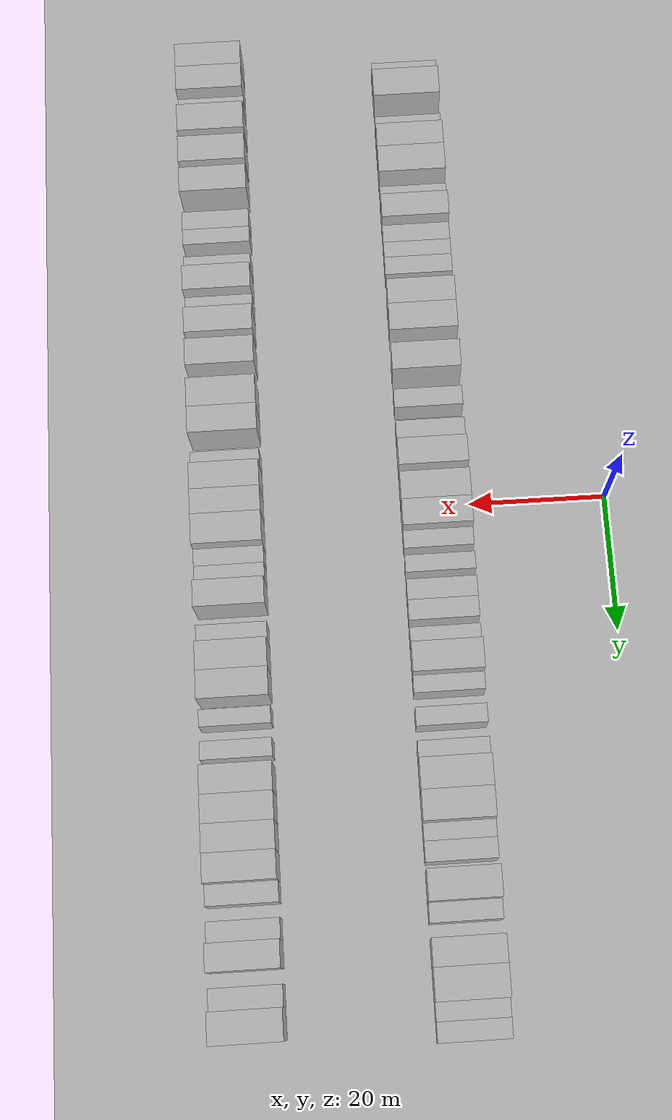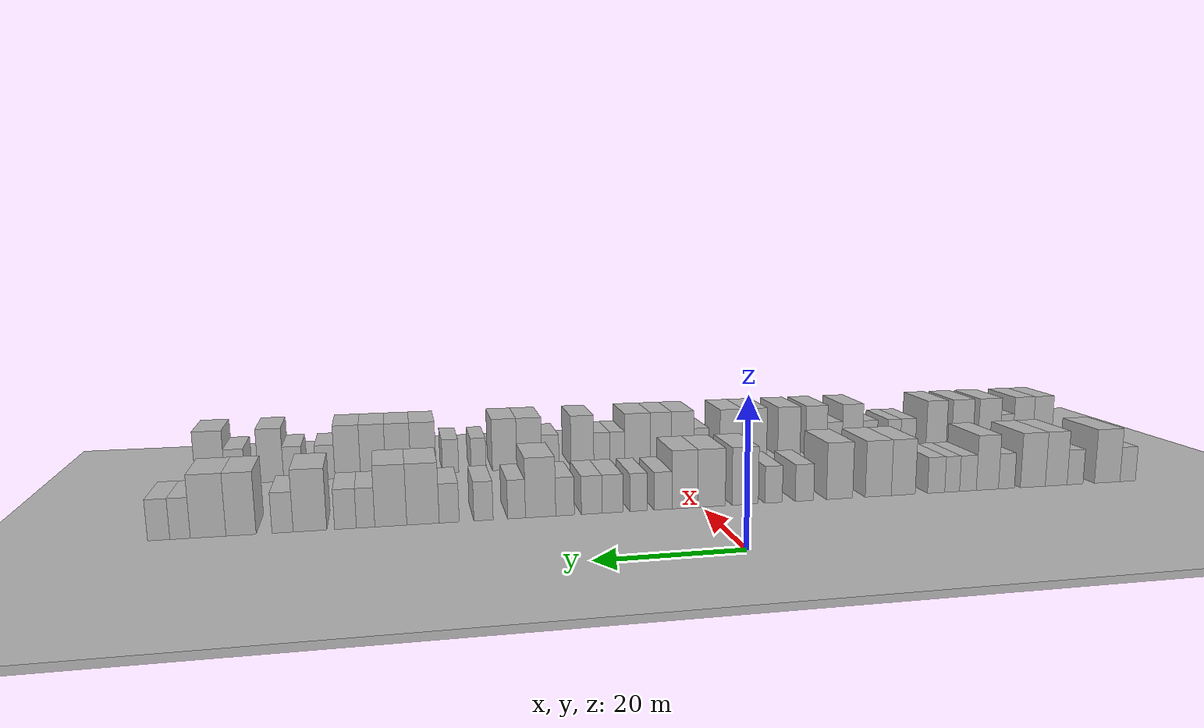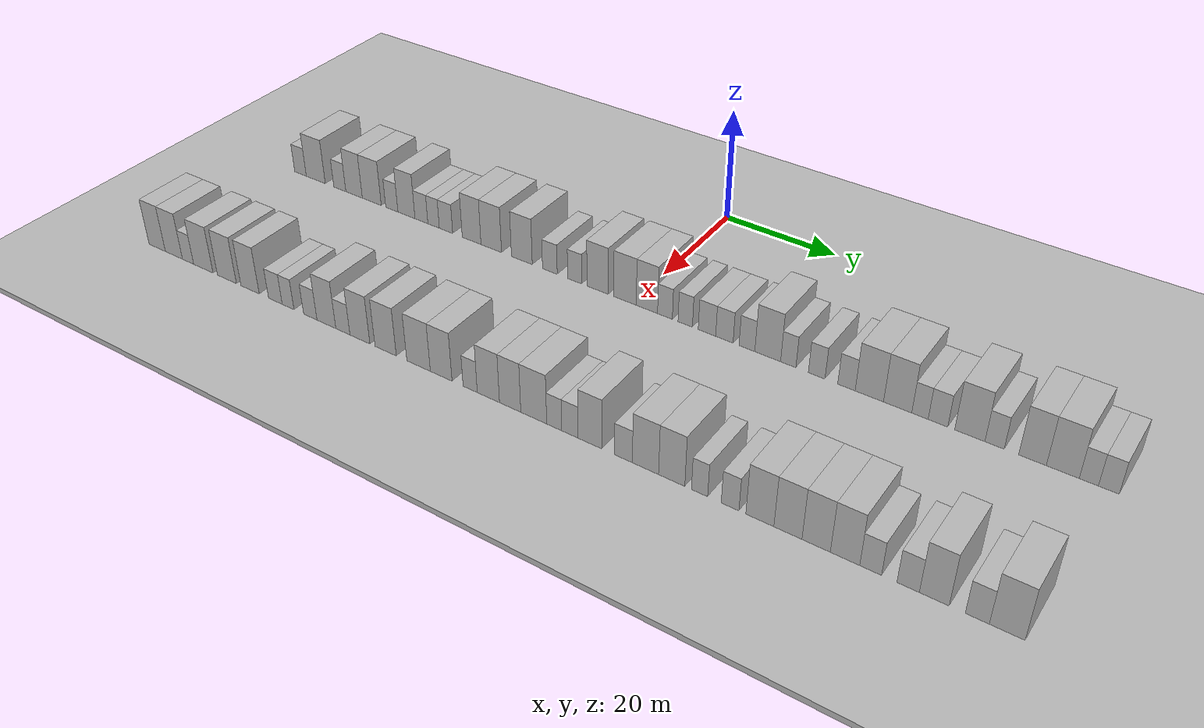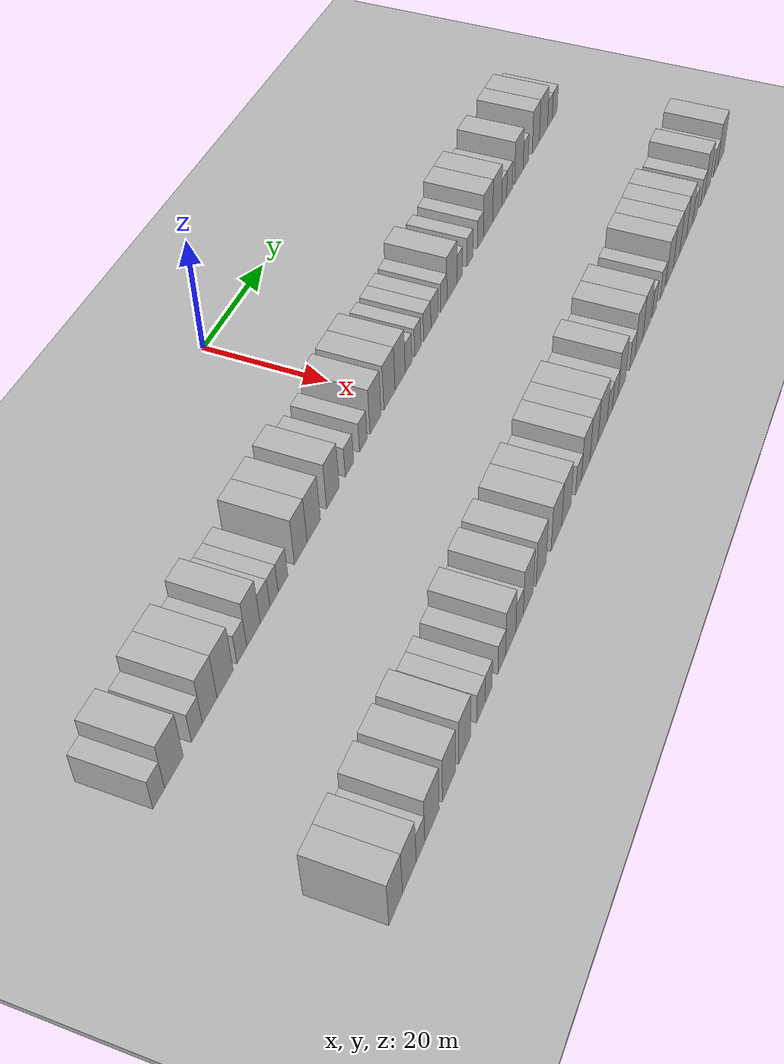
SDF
<sdf version="1.6">
 <world name="default">
  <include><name>ground_plane_1</name><uri>model://HANNAS_ground_plane</uri></include>
  <include>
   <name>ground_plane_2</name>
   <uri>model://HANNAS_ground_plane</uri>
   <pose>100 0 0  0 0 0</pose>
  </include>
  <model name="building_36">
   <static>1</static>
   <pose>25.0000 -68.7085 0 0.000000 0.000000 0.000000</pose>
   <link name="link">
    <pose>0 0 3.00 0 0 0</pose>
    <collision name="collision"><geometry><box><size>10.0000 2.7532 6.0000</size></box></geometry></collision>
    <visual name="visual">
     <cast_shadows>0</cast_shadows>
     <geometry><box><size>10.0000 2.7532 6.0000</size></box></geometry>
     <material>
      <script>
       <uri>model://HANNAS_wall/materials/scripts</uri>
       <uri>model://HANNAS_wall/materials/textures</uri>
       <name>vrc/HANNAS_wall</name>
      </script>
     </material>
    </visual>
   </link>
  </model>
  <model name="building_37">
   <static>1</static>
   <pose>25.0000 -65.0946 0 0.000000 0.000000 0.000000</pose>
   <link name="link">
    <pose>0 0 4.50 0 0 0</pose>
    <collision name="collision"><geometry><box><size>10.0000 4.4745 9.0000</size></box></geometry></collision>
    <visual name="visual">
     <cast_shadows>0</cast_shadows>
     <geometry><box><size>10.0000 4.4745 9.0000</size></box></geometry>
     <material>
      <script>
       <uri>model://HANNAS_wall/materials/scripts</uri>
       <uri>model://HANNAS_wall/materials/textures</uri>
       <name>vrc/HANNAS_wall</name>
      </script>
     </material>
    </visual>
   </link>
  </model>
  <model name="building_38">
   <static>1</static>
   <pose>25.0000 -59.4765 0 0.000000 0.000000 0.000000</pose>
   <link name="link">
    <pose>0 0 3.00 0 0 0</pose>
    <collision name="collision"><geometry><box><size>10.0000 2.7617 6.0000</size></box></geometry></collision>
    <visual name="visual">
     <cast_shadows>0</cast_shadows>
     <geometry><box><size>10.0000 2.7617 6.0000</size></box></geometry>
     <material>
      <script>
       <uri>model://HANNAS_wall/materials/scripts</uri>
       <uri>model://HANNAS_wall/materials/textures</uri>
       <name>vrc/HANNAS_wall</name>
      </script>
     </material>
    </visual>
   </link>
  </model>
  <model name="building_39">
   <static>1</static>
   <pose>25.0000 -56.2175 0 0.000000 0.000000 0.000000</pose>
   <link name="link">
    <pose>0 0 4.50 0 0 0</pose>
    <collision name="collision"><geometry><box><size>10.0000 3.7563 9.0000</size></box></geometry></collision>
    <visual name="visual">
     <cast_shadows>0</cast_shadows>
     <geometry><box><size>10.0000 3.7563 9.0000</size></box></geometry>
     <material>
      <script>
       <uri>model://HANNAS_wall/materials/scripts</uri>
       <uri>model://HANNAS_wall/materials/textures</uri>
       <name>vrc/HANNAS_wall</name>
      </script>
     </material>
    </visual>
   </link>
  </model>
  <model name="building_40">
   <static>1</static>
   <pose>25.0000 -52.2146 0 0.000000 0.000000 0.000000</pose>
   <link name="link">
    <pose>0 0 4.50 0 0 0</pose>
    <collision name="collision"><geometry><box><size>10.0000 4.2497 9.0000</size></box></geometry></collision>
    <visual name="visual">
     <cast_shadows>0</cast_shadows>
     <geometry><box><size>10.0000 4.2497 9.0000</size></box></geometry>
     <material>
      <script>
       <uri>model://HANNAS_wall/materials/scripts</uri>
       <uri>model://HANNAS_wall/materials/textures</uri>
       <name>vrc/HANNAS_wall</name>
      </script>
     </material>
    </visual>
   </link>
  </model>
  <model name="building_41">
   <static>1</static>
   <pose>25.0000 -47.7446 0 0.000000 0.000000 0.000000</pose>
   <link name="link">
    <pose>0 0 3.00 0 0 0</pose>
    <collision name="collision"><geometry><box><size>10.0000 2.6902 6.0000</size></box></geometry></collision>
    <visual name="visual">
     <cast_shadows>0</cast_shadows>
     <geometry><box><size>10.0000 2.6902 6.0000</size></box></geometry>
     <material>
      <script>
       <uri>model://HANNAS_wall/materials/scripts</uri>
       <uri>model://HANNAS_wall/materials/textures</uri>
       <name>vrc/HANNAS_wall</name>
      </script>
     </material>
    </visual>
   </link>
  </model>
  <model name="building_42">
   <static>1</static>
   <pose>25.0000 -44.5399 0 0.000000 0.000000 0.000000</pose>
   <link name="link">
    <pose>0 0 4.50 0 0 0</pose>
    <collision name="collision"><geometry><box><size>10.0000 3.7191 9.0000</size></box></geometry></collision>
    <visual name="visual">
     <cast_shadows>0</cast_shadows>
     <geometry><box><size>10.0000 3.7191 9.0000</size></box></geometry>
     <material>
      <script>
       <uri>model://HANNAS_wall/materials/scripts</uri>
       <uri>model://HANNAS_wall/materials/textures</uri>
       <name>vrc/HANNAS_wall</name>
      </script>
     </material>
    </visual>
   </link>
  </model>
  <model name="building_43">
   <static>1</static>
   <pose>25.0000 -41.2943 0 0.000000 0.000000 0.000000</pose>
   <link name="link">
    <pose>0 0 3.00 0 0 0</pose>
    <collision name="collision"><geometry><box><size>10.0000 2.7721 6.0000</size></box></geometry></collision>
    <visual name="visual">
     <cast_shadows>0</cast_shadows>
     <geometry><box><size>10.0000 2.7721 6.0000</size></box></geometry>
     <material>
      <script>
       <uri>model://HANNAS_wall/materials/scripts</uri>
       <uri>model://HANNAS_wall/materials/textures</uri>
       <name>vrc/HANNAS_wall</name>
      </script>
     </material>
    </visual>
   </link>
  </model>
  <model name="building_44">
   <static>1</static>
   <pose>25.0000 -38.6883 0 0.000000 0.000000 0.000000</pose>
   <link name="link">
    <pose>0 0 3.00 0 0 0</pose>
    <collision name="collision"><geometry><box><size>10.0000 2.4399 6.0000</size></box></geometry></collision>
    <visual name="visual">
     <cast_shadows>0</cast_shadows>
     <geometry><box><size>10.0000 2.4399 6.0000</size></box></geometry>
     <material>
      <script>
       <uri>model://HANNAS_wall/materials/scripts</uri>
       <uri>model://HANNAS_wall/materials/textures</uri>
       <name>vrc/HANNAS_wall</name>
      </script>
     </material>
    </visual>
   </link>
  </model>
  <model name="building_45">
   <static>1</static>
   <pose>25.0000 -36.0601 0 0.000000 0.000000 0.000000</pose>
   <link name="link">
    <pose>0 0 3.00 0 0 0</pose>
    <collision name="collision"><geometry><box><size>10.0000 2.8165 6.0000</size></box></geometry></collision>
    <visual name="visual">
     <cast_shadows>0</cast_shadows>
     <geometry><box><size>10.0000 2.8165 6.0000</size></box></geometry>
     <material>
      <script>
       <uri>model://HANNAS_wall/materials/scripts</uri>
       <uri>model://HANNAS_wall/materials/textures</uri>
       <name>vrc/HANNAS_wall</name>
      </script>
     </material>
    </visual>
   </link>
  </model>
  <model name="building_46">
   <static>1</static>
   <pose>25.0000 -30.7179 0 0.000000 0.000000 0.000000</pose>
   <link name="link">
    <pose>0 0 4.50 0 0 0</pose>
    <collision name="collision"><geometry><box><size>10.0000 3.8680 9.0000</size></box></geometry></collision>
    <visual name="visual">
     <cast_shadows>0</cast_shadows>
     <geometry><box><size>10.0000 3.8680 9.0000</size></box></geometry>
     <material>
      <script>
       <uri>model://HANNAS_wall/materials/scripts</uri>
       <uri>model://HANNAS_wall/materials/textures</uri>
       <name>vrc/HANNAS_wall</name>
      </script>
     </material>
    </visual>
   </link>
  </model>
  <model name="building_47">
   <static>1</static>
   <pose>25.0000 -26.7007 0 0.000000 0.000000 0.000000</pose>
   <link name="link">
    <pose>0 0 4.50 0 0 0</pose>
    <collision name="collision"><geometry><box><size>10.0000 4.1663 9.0000</size></box></geometry></collision>
    <visual name="visual">
     <cast_shadows>0</cast_shadows>
     <geometry><box><size>10.0000 4.1663 9.0000</size></box></geometry>
     <material>
      <script>
       <uri>model://HANNAS_wall/materials/scripts</uri>
       <uri>model://HANNAS_wall/materials/textures</uri>
       <name>vrc/HANNAS_wall</name>
      </script>
     </material>
    </visual>
   </link>
  </model>
  <model name="building_48">
   <static>1</static>
   <pose>25.0000 -20.5544 0 0.000000 0.000000 0.000000</pose>
   <link name="link">
    <pose>0 0 4.50 0 0 0</pose>
    <collision name="collision"><geometry><box><size>10.0000 4.1264 9.0000</size></box></geometry></collision>
    <visual name="visual">
     <cast_shadows>0</cast_shadows>
     <geometry><box><size>10.0000 4.1264 9.0000</size></box></geometry>
     <material>
      <script>
       <uri>model://HANNAS_wall/materials/scripts</uri>
       <uri>model://HANNAS_wall/materials/textures</uri>
       <name>vrc/HANNAS_wall</name>
      </script>
     </material>
    </visual>
   </link>
  </model>
  <model name="building_49">
   <static>1</static>
   <pose>25.0000 -15.0626 0 0.000000 0.000000 0.000000</pose>
   <link name="link">
    <pose>0 0 3.00 0 0 0</pose>
    <collision name="collision"><geometry><box><size>10.0000 2.8571 6.0000</size></box></geometry></collision>
    <visual name="visual">
     <cast_shadows>0</cast_shadows>
     <geometry><box><size>10.0000 2.8571 6.0000</size></box></geometry>
     <material>
      <script>
       <uri>model://HANNAS_wall/materials/scripts</uri>
       <uri>model://HANNAS_wall/materials/textures</uri>
       <name>vrc/HANNAS_wall</name>
      </script>
     </material>
    </visual>
   </link>
  </model>
  <model name="building_50">
   <static>1</static>
   <pose>25.0000 -10.3037 0 0.000000 0.000000 0.000000</pose>
   <link name="link">
    <pose>0 0 3.00 0 0 0</pose>
    <collision name="collision"><geometry><box><size>10.0000 2.6608 6.0000</size></box></geometry></collision>
    <visual name="visual">
     <cast_shadows>0</cast_shadows>
     <geometry><box><size>10.0000 2.6608 6.0000</size></box></geometry>
     <material>
      <script>
       <uri>model://HANNAS_wall/materials/scripts</uri>
       <uri>model://HANNAS_wall/materials/textures</uri>
       <name>vrc/HANNAS_wall</name>
      </script>
     </material>
    </visual>
   </link>
  </model>
  <model name="building_51">
   <static>1</static>
   <pose>25.0000 -5.9813 0 0.000000 0.000000 0.000000</pose>
   <link name="link">
    <pose>0 0 4.50 0 0 0</pose>
    <collision name="collision"><geometry><box><size>10.0000 3.9838 9.0000</size></box></geometry></collision>
    <visual name="visual">
     <cast_shadows>0</cast_shadows>
     <geometry><box><size>10.0000 3.9838 9.0000</size></box></geometry>
     <material>
      <script>
       <uri>model://HANNAS_wall/materials/scripts</uri>
       <uri>model://HANNAS_wall/materials/textures</uri>
       <name>vrc/HANNAS_wall</name>
      </script>
     </material>
    </visual>
   </link>
  </model>
  <model name="building_52">
   <static>1</static>
   <pose>25.0000 -0.9367 0 0.000000 0.000000 0.000000</pose>
   <link name="link">
    <pose>0 0 4.50 0 0 0</pose>
    <collision name="collision"><geometry><box><size>10.0000 4.1054 9.0000</size></box></geometry></collision>
    <visual name="visual">
     <cast_shadows>0</cast_shadows>
     <geometry><box><size>10.0000 4.1054 9.0000</size></box></geometry>
     <material>
      <script>
       <uri>model://HANNAS_wall/materials/scripts</uri>
       <uri>model://HANNAS_wall/materials/textures</uri>
       <name>vrc/HANNAS_wall</name>
      </script>
     </material>
    </visual>
   </link>
  </model>
  <model name="building_53">
   <static>1</static>
   <pose>25.0000 3.0385 0 0.000000 0.000000 0.000000</pose>
   <link name="link">
    <pose>0 0 4.50 0 0 0</pose>
    <collision name="collision"><geometry><box><size>10.0000 3.8451 9.0000</size></box></geometry></collision>
    <visual name="visual">
     <cast_shadows>0</cast_shadows>
     <geometry><box><size>10.0000 3.8451 9.0000</size></box></geometry>
     <material>
      <script>
       <uri>model://HANNAS_wall/materials/scripts</uri>
       <uri>model://HANNAS_wall/materials/textures</uri>
       <name>vrc/HANNAS_wall</name>
      </script>
     </material>
    </visual>
   </link>
  </model>
  <model name="building_54">
   <static>1</static>
   <pose>25.0000 6.2718 0 0.000000 0.000000 0.000000</pose>
   <link name="link">
    <pose>0 0 3.00 0 0 0</pose>
    <collision name="collision"><geometry><box><size>10.0000 2.6216 6.0000</size></box></geometry></collision>
    <visual name="visual">
     <cast_shadows>0</cast_shadows>
     <geometry><box><size>10.0000 2.6216 6.0000</size></box></geometry>
     <material>
      <script>
       <uri>model://HANNAS_wall/materials/scripts</uri>
       <uri>model://HANNAS_wall/materials/textures</uri>
       <name>vrc/HANNAS_wall</name>
      </script>
     </material>
    </visual>
   </link>
  </model>
  <model name="building_55">
   <static>1</static>
   <pose>25.0000 9.8416 0 0.000000 0.000000 0.000000</pose>
   <link name="link">
    <pose>0 0 3.00 0 0 0</pose>
    <collision name="collision"><geometry><box><size>10.0000 2.5180 6.0000</size></box></geometry></collision>
    <visual name="visual">
     <cast_shadows>0</cast_shadows>
     <geometry><box><size>10.0000 2.5180 6.0000</size></box></geometry>
     <material>
      <script>
       <uri>model://HANNAS_wall/materials/scripts</uri>
       <uri>model://HANNAS_wall/materials/textures</uri>
       <name>vrc/HANNAS_wall</name>
      </script>
     </material>
    </visual>
   </link>
  </model>
  <model name="building_56">
   <static>1</static>
   <pose>25.0000 13.5956 0 0.000000 0.000000 0.000000</pose>
   <link name="link">
    <pose>0 0 3.00 0 0 0</pose>
    <collision name="collision"><geometry><box><size>10.0000 2.9900 6.0000</size></box></geometry></collision>
    <visual name="visual">
     <cast_shadows>0</cast_shadows>
     <geometry><box><size>10.0000 2.9900 6.0000</size></box></geometry>
     <material>
      <script>
       <uri>model://HANNAS_wall/materials/scripts</uri>
       <uri>model://HANNAS_wall/materials/textures</uri>
       <name>vrc/HANNAS_wall</name>
      </script>
     </material>
    </visual>
   </link>
  </model>
  <model name="building_57">
   <static>1</static>
   <pose>25.0000 16.5697 0 0.000000 0.000000 0.000000</pose>
   <link name="link">
    <pose>0 0 3.00 0 0 0</pose>
    <collision name="collision"><geometry><box><size>10.0000 2.9582 6.0000</size></box></geometry></collision>
    <visual name="visual">
     <cast_shadows>0</cast_shadows>
     <geometry><box><size>10.0000 2.9582 6.0000</size></box></geometry>
     <material>
      <script>
       <uri>model://HANNAS_wall/materials/scripts</uri>
       <uri>model://HANNAS_wall/materials/textures</uri>
       <name>vrc/HANNAS_wall</name>
      </script>
     </material>
    </visual>
   </link>
  </model>
  <model name="building_58">
   <static>1</static>
   <pose>25.0000 20.3652 0 0.000000 0.000000 0.000000</pose>
   <link name="link">
    <pose>0 0 3.00 0 0 0</pose>
    <collision name="collision"><geometry><box><size>10.0000 2.6328 6.0000</size></box></geometry></collision>
    <visual name="visual">
     <cast_shadows>0</cast_shadows>
     <geometry><box><size>10.0000 2.6328 6.0000</size></box></geometry>
     <material>
      <script>
       <uri>model://HANNAS_wall/materials/scripts</uri>
       <uri>model://HANNAS_wall/materials/textures</uri>
       <name>vrc/HANNAS_wall</name>
      </script>
     </material>
    </visual>
   </link>
  </model>
  <model name="building_59">
   <static>1</static>
   <pose>25.0000 23.7992 0 0.000000 0.000000 0.000000</pose>
   <link name="link">
    <pose>0 0 4.50 0 0 0</pose>
    <collision name="collision"><geometry><box><size>10.0000 4.2353 9.0000</size></box></geometry></collision>
    <visual name="visual">
     <cast_shadows>0</cast_shadows>
     <geometry><box><size>10.0000 4.2353 9.0000</size></box></geometry>
     <material>
      <script>
       <uri>model://HANNAS_wall/materials/scripts</uri>
       <uri>model://HANNAS_wall/materials/textures</uri>
       <name>vrc/HANNAS_wall</name>
      </script>
     </material>
    </visual>
   </link>
  </model>
  <model name="building_60">
   <static>1</static>
   <pose>25.0000 27.1506 0 0.000000 0.000000 0.000000</pose>
   <link name="link">
    <pose>0 0 3.00 0 0 0</pose>
    <collision name="collision"><geometry><box><size>10.0000 2.4674 6.0000</size></box></geometry></collision>
    <visual name="visual">
     <cast_shadows>0</cast_shadows>
     <geometry><box><size>10.0000 2.4674 6.0000</size></box></geometry>
     <material>
      <script>
       <uri>model://HANNAS_wall/materials/scripts</uri>
       <uri>model://HANNAS_wall/materials/textures</uri>
       <name>vrc/HANNAS_wall</name>
      </script>
     </material>
    </visual>
   </link>
  </model>
  <model name="building_61">
   <static>1</static>
   <pose>25.0000 31.7024 0 0.000000 0.000000 0.000000</pose>
   <link name="link">
    <pose>0 0 3.00 0 0 0</pose>
    <collision name="collision"><geometry><box><size>10.0000 2.6361 6.0000</size></box></geometry></collision>
    <visual name="visual">
     <cast_shadows>0</cast_shadows>
     <geometry><box><size>10.0000 2.6361 6.0000</size></box></geometry>
     <material>
      <script>
       <uri>model://HANNAS_wall/materials/scripts</uri>
       <uri>model://HANNAS_wall/materials/textures</uri>
       <name>vrc/HANNAS_wall</name>
      </script>
     </material>
    </visual>
   </link>
  </model>
  <model name="building_62">
   <static>1</static>
   <pose>25.0000 36.3706 0 0.000000 0.000000 0.000000</pose>
   <link name="link">
    <pose>0 0 3.00 0 0 0</pose>
    <collision name="collision"><geometry><box><size>10.0000 2.7004 6.0000</size></box></geometry></collision>
    <visual name="visual">
     <cast_shadows>0</cast_shadows>
     <geometry><box><size>10.0000 2.7004 6.0000</size></box></geometry>
     <material>
      <script>
       <uri>model://HANNAS_wall/materials/scripts</uri>
       <uri>model://HANNAS_wall/materials/textures</uri>
       <name>vrc/HANNAS_wall</name>
      </script>
     </material>
    </visual>
   </link>
  </model>
  <model name="building_63">
   <static>1</static>
   <pose>25.0000 39.8897 0 0.000000 0.000000 0.000000</pose>
   <link name="link">
    <pose>0 0 4.50 0 0 0</pose>
    <collision name="collision"><geometry><box><size>10.0000 4.3378 9.0000</size></box></geometry></collision>
    <visual name="visual">
     <cast_shadows>0</cast_shadows>
     <geometry><box><size>10.0000 4.3378 9.0000</size></box></geometry>
     <material>
      <script>
       <uri>model://HANNAS_wall/materials/scripts</uri>
       <uri>model://HANNAS_wall/materials/textures</uri>
       <name>vrc/HANNAS_wall</name>
      </script>
     </material>
    </visual>
   </link>
  </model>
  <model name="building_64">
   <static>1</static>
   <pose>25.0000 44.1730 0 0.000000 0.000000 0.000000</pose>
   <link name="link">
    <pose>0 0 4.50 0 0 0</pose>
    <collision name="collision"><geometry><box><size>10.0000 4.2289 9.0000</size></box></geometry></collision>
    <visual name="visual">
     <cast_shadows>0</cast_shadows>
     <geometry><box><size>10.0000 4.2289 9.0000</size></box></geometry>
     <material>
      <script>
       <uri>model://HANNAS_wall/materials/scripts</uri>
       <uri>model://HANNAS_wall/materials/textures</uri>
       <name>vrc/HANNAS_wall</name>
      </script>
     </material>
    </visual>
   </link>
  </model>
  <model name="building_65">
   <static>1</static>
   <pose>25.0000 47.4939 0 0.000000 0.000000 0.000000</pose>
   <link name="link">
    <pose>0 0 3.00 0 0 0</pose>
    <collision name="collision"><geometry><box><size>10.0000 2.4128 6.0000</size></box></geometry></collision>
    <visual name="visual">
     <cast_shadows>0</cast_shadows>
     <geometry><box><size>10.0000 2.4128 6.0000</size></box></geometry>
     <material>
      <script>
       <uri>model://HANNAS_wall/materials/scripts</uri>
       <uri>model://HANNAS_wall/materials/textures</uri>
       <name>vrc/HANNAS_wall</name>
      </script>
     </material>
    </visual>
   </link>
  </model>
  <model name="building_66">
   <static>1</static>
   <pose>25.0000 50.1245 0 0.000000 0.000000 0.000000</pose>
   <link name="link">
    <pose>0 0 3.00 0 0 0</pose>
    <collision name="collision"><geometry><box><size>10.0000 2.8485 6.0000</size></box></geometry></collision>
    <visual name="visual">
     <cast_shadows>0</cast_shadows>
     <geometry><box><size>10.0000 2.8485 6.0000</size></box></geometry>
     <material>
      <script>
       <uri>model://HANNAS_wall/materials/scripts</uri>
       <uri>model://HANNAS_wall/materials/textures</uri>
       <name>vrc/HANNAS_wall</name>
      </script>
     </material>
    </visual>
   </link>
  </model>
  <model name="building_67">
   <static>1</static>
   <pose>25.0000 54.7061 0 0.000000 0.000000 0.000000</pose>
   <link name="link">
    <pose>0 0 4.50 0 0 0</pose>
    <collision name="collision"><geometry><box><size>10.0000 4.3147 9.0000</size></box></geometry></collision>
    <visual name="visual">
     <cast_shadows>0</cast_shadows>
     <geometry><box><size>10.0000 4.3147 9.0000</size></box></geometry>
     <material>
      <script>
       <uri>model://HANNAS_wall/materials/scripts</uri>
       <uri>model://HANNAS_wall/materials/textures</uri>
       <name>vrc/HANNAS_wall</name>
      </script>
     </material>
    </visual>
   </link>
  </model>
  <model name="building_68">
   <static>1</static>
   <pose>25.0000 58.2122 0 0.000000 0.000000 0.000000</pose>
   <link name="link">
    <pose>0 0 3.00 0 0 0</pose>
    <collision name="collision"><geometry><box><size>10.0000 2.6975 6.0000</size></box></geometry></collision>
    <visual name="visual">
     <cast_shadows>0</cast_shadows>
     <geometry><box><size>10.0000 2.6975 6.0000</size></box></geometry>
     <material>
      <script>
       <uri>model://HANNAS_wall/materials/scripts</uri>
       <uri>model://HANNAS_wall/materials/textures</uri>
       <name>vrc/HANNAS_wall</name>
      </script>
     </material>
    </visual>
   </link>
  </model>
  <model name="building_69">
   <static>1</static>
   <pose>25.0000 63.4488 0 0.000000 0.000000 0.000000</pose>
   <link name="link">
    <pose>0 0 4.50 0 0 0</pose>
    <collision name="collision"><geometry><box><size>10.0000 3.7757 9.0000</size></box></geometry></collision>
    <visual name="visual">
     <cast_shadows>0</cast_shadows>
     <geometry><box><size>10.0000 3.7757 9.0000</size></box></geometry>
     <material>
      <script>
       <uri>model://HANNAS_wall/materials/scripts</uri>
       <uri>model://HANNAS_wall/materials/textures</uri>
       <name>vrc/HANNAS_wall</name>
      </script>
     </material>
    </visual>
   </link>
  </model>
  <model name="building_70">
   <static>1</static>
   <pose>25.0000 67.5405 0 0.000000 0.000000 0.000000</pose>
   <link name="link">
    <pose>0 0 4.50 0 0 0</pose>
    <collision name="collision"><geometry><box><size>10.0000 4.4078 9.0000</size></box></geometry></collision>
    <visual name="visual">
     <cast_shadows>0</cast_shadows>
     <geometry><box><size>10.0000 4.4078 9.0000</size></box></geometry>
     <material>
      <script>
       <uri>model://HANNAS_wall/materials/scripts</uri>
       <uri>model://HANNAS_wall/materials/textures</uri>
       <name>vrc/HANNAS_wall</name>
      </script>
     </material>
    </visual>
   </link>
  </model>
  <model name="building_71">
   <static>1</static>
   <pose>25.0000 71.0036 0 0.000000 0.000000 0.000000</pose>
   <link name="link">
    <pose>0 0 3.00 0 0 0</pose>
    <collision name="collision"><geometry><box><size>10.0000 2.5184 6.0000</size></box></geometry></collision>
    <visual name="visual">
     <cast_shadows>0</cast_shadows>
     <geometry><box><size>10.0000 2.5184 6.0000</size></box></geometry>
     <material>
      <script>
       <uri>model://HANNAS_wall/materials/scripts</uri>
       <uri>model://HANNAS_wall/materials/textures</uri>
       <name>vrc/HANNAS_wall</name>
      </script>
     </material>
    </visual>
   </link>
  </model>
  <model name="building_72">
   <static>1</static>
   <pose>25.0000 73.6179 0 0.000000 0.000000 0.000000</pose>
   <link name="link">
    <pose>0 0 3.00 0 0 0</pose>
    <collision name="collision"><geometry><box><size>10.0000 2.7102 6.0000</size></box></geometry></collision>
    <visual name="visual">
     <cast_shadows>0</cast_shadows>
     <geometry><box><size>10.0000 2.7102 6.0000</size></box></geometry>
     <material>
      <script>
       <uri>model://HANNAS_wall/materials/scripts</uri>
       <uri>model://HANNAS_wall/materials/textures</uri>
       <name>vrc/HANNAS_wall</name>
      </script>
     </material>
    </visual>
   </link>
  </model>
  <model name="building_148">
   <static>1</static>
   <pose>55.0000 -71.6278 0 0.000000 0.000000 0.000000</pose>
   <link name="link">
    <pose>0 0 4.50 0 0 0</pose>
    <collision name="collision"><geometry><box><size>10.0000 3.8162 9.0000</size></box></geometry></collision>
    <visual name="visual">
     <cast_shadows>0</cast_shadows>
     <geometry><box><size>10.0000 3.8162 9.0000</size></box></geometry>
     <material>
      <script>
       <uri>model://HANNAS_wall/materials/scripts</uri>
       <uri>model://HANNAS_wall/materials/textures</uri>
       <name>vrc/HANNAS_wall</name>
      </script>
     </material>
    </visual>
   </link>
  </model>
  <model name="building_149">
   <static>1</static>
   <pose>55.0000 -67.7384 0 0.000000 0.000000 0.000000</pose>
   <link name="link">
    <pose>0 0 4.50 0 0 0</pose>
    <collision name="collision"><geometry><box><size>10.0000 3.9627 9.0000</size></box></geometry></collision>
    <visual name="visual">
     <cast_shadows>0</cast_shadows>
     <geometry><box><size>10.0000 3.9627 9.0000</size></box></geometry>
     <material>
      <script>
       <uri>model://HANNAS_wall/materials/scripts</uri>
       <uri>model://HANNAS_wall/materials/textures</uri>
       <name>vrc/HANNAS_wall</name>
      </script>
     </material>
    </visual>
   </link>
  </model>
  <model name="building_150">
   <static>1</static>
   <pose>55.0000 -64.4821 0 0.000000 0.000000 0.000000</pose>
   <link name="link">
    <pose>0 0 3.00 0 0 0</pose>
    <collision name="collision"><geometry><box><size>10.0000 2.5498 6.0000</size></box></geometry></collision>
    <visual name="visual">
     <cast_shadows>0</cast_shadows>
     <geometry><box><size>10.0000 2.5498 6.0000</size></box></geometry>
     <material>
      <script>
       <uri>model://HANNAS_wall/materials/scripts</uri>
       <uri>model://HANNAS_wall/materials/textures</uri>
       <name>vrc/HANNAS_wall</name>
      </script>
     </material>
    </visual>
   </link>
  </model>
  <model name="building_151">
   <static>1</static>
   <pose>55.0000 -61.0244 0 0.000000 0.000000 0.000000</pose>
   <link name="link">
    <pose>0 0 4.50 0 0 0</pose>
    <collision name="collision"><geometry><box><size>10.0000 4.3657 9.0000</size></box></geometry></collision>
    <visual name="visual">
     <cast_shadows>0</cast_shadows>
     <geometry><box><size>10.0000 4.3657 9.0000</size></box></geometry>
     <material>
      <script>
       <uri>model://HANNAS_wall/materials/scripts</uri>
       <uri>model://HANNAS_wall/materials/textures</uri>
       <name>vrc/HANNAS_wall</name>
      </script>
     </material>
    </visual>
   </link>
  </model>
  <model name="building_152">
   <static>1</static>
   <pose>55.0000 -55.7545 0 0.000000 0.000000 0.000000</pose>
   <link name="link">
    <pose>0 0 4.50 0 0 0</pose>
    <collision name="collision"><geometry><box><size>10.0000 4.1741 9.0000</size></box></geometry></collision>
    <visual name="visual">
     <cast_shadows>0</cast_shadows>
     <geometry><box><size>10.0000 4.1741 9.0000</size></box></geometry>
     <material>
      <script>
       <uri>model://HANNAS_wall/materials/scripts</uri>
       <uri>model://HANNAS_wall/materials/textures</uri>
       <name>vrc/HANNAS_wall</name>
      </script>
     </material>
    </visual>
   </link>
  </model>
  <model name="building_153">
   <static>1</static>
   <pose>55.0000 -50.6962 0 0.000000 0.000000 0.000000</pose>
   <link name="link">
    <pose>0 0 4.50 0 0 0</pose>
    <collision name="collision"><geometry><box><size>10.0000 3.9426 9.0000</size></box></geometry></collision>
    <visual name="visual">
     <cast_shadows>0</cast_shadows>
     <geometry><box><size>10.0000 3.9426 9.0000</size></box></geometry>
     <material>
      <script>
       <uri>model://HANNAS_wall/materials/scripts</uri>
       <uri>model://HANNAS_wall/materials/textures</uri>
       <name>vrc/HANNAS_wall</name>
      </script>
     </material>
    </visual>
   </link>
  </model>
  <model name="building_154">
   <static>1</static>
   <pose>55.0000 -45.2849 0 0.000000 0.000000 0.000000</pose>
   <link name="link">
    <pose>0 0 3.00 0 0 0</pose>
    <collision name="collision"><geometry><box><size>10.0000 2.8800 6.0000</size></box></geometry></collision>
    <visual name="visual">
     <cast_shadows>0</cast_shadows>
     <geometry><box><size>10.0000 2.8800 6.0000</size></box></geometry>
     <material>
      <script>
       <uri>model://HANNAS_wall/materials/scripts</uri>
       <uri>model://HANNAS_wall/materials/textures</uri>
       <name>vrc/HANNAS_wall</name>
      </script>
     </material>
    </visual>
   </link>
  </model>
  <model name="building_155">
   <static>1</static>
   <pose>55.0000 -42.6183 0 0.000000 0.000000 0.000000</pose>
   <link name="link">
    <pose>0 0 3.00 0 0 0</pose>
    <collision name="collision"><geometry><box><size>10.0000 2.4531 6.0000</size></box></geometry></collision>
    <visual name="visual">
     <cast_shadows>0</cast_shadows>
     <geometry><box><size>10.0000 2.4531 6.0000</size></box></geometry>
     <material>
      <script>
       <uri>model://HANNAS_wall/materials/scripts</uri>
       <uri>model://HANNAS_wall/materials/textures</uri>
       <name>vrc/HANNAS_wall</name>
      </script>
     </material>
    </visual>
   </link>
  </model>
  <model name="building_156">
   <static>1</static>
   <pose>55.0000 -38.0248 0 0.000000 0.000000 0.000000</pose>
   <link name="link">
    <pose>0 0 3.00 0 0 0</pose>
    <collision name="collision"><geometry><box><size>10.0000 2.7338 6.0000</size></box></geometry></collision>
    <visual name="visual">
     <cast_shadows>0</cast_shadows>
     <geometry><box><size>10.0000 2.7338 6.0000</size></box></geometry>
     <material>
      <script>
       <uri>model://HANNAS_wall/materials/scripts</uri>
       <uri>model://HANNAS_wall/materials/textures</uri>
       <name>vrc/HANNAS_wall</name>
      </script>
     </material>
    </visual>
   </link>
  </model>
  <model name="building_157">
   <static>1</static>
   <pose>55.0000 -34.7535 0 0.000000 0.000000 0.000000</pose>
   <link name="link">
    <pose>0 0 4.50 0 0 0</pose>
    <collision name="collision"><geometry><box><size>10.0000 3.8088 9.0000</size></box></geometry></collision>
    <visual name="visual">
     <cast_shadows>0</cast_shadows>
     <geometry><box><size>10.0000 3.8088 9.0000</size></box></geometry>
     <material>
      <script>
       <uri>model://HANNAS_wall/materials/scripts</uri>
       <uri>model://HANNAS_wall/materials/textures</uri>
       <name>vrc/HANNAS_wall</name>
      </script>
     </material>
    </visual>
   </link>
  </model>
  <model name="building_158">
   <static>1</static>
   <pose>55.0000 -31.4401 0 0.000000 0.000000 0.000000</pose>
   <link name="link">
    <pose>0 0 3.00 0 0 0</pose>
    <collision name="collision"><geometry><box><size>10.0000 2.8181 6.0000</size></box></geometry></collision>
    <visual name="visual">
     <cast_shadows>0</cast_shadows>
     <geometry><box><size>10.0000 2.8181 6.0000</size></box></geometry>
     <material>
      <script>
       <uri>model://HANNAS_wall/materials/scripts</uri>
       <uri>model://HANNAS_wall/materials/textures</uri>
       <name>vrc/HANNAS_wall</name>
      </script>
     </material>
    </visual>
   </link>
  </model>
  <model name="building_159">
   <static>1</static>
   <pose>55.0000 -28.0813 0 0.000000 0.000000 0.000000</pose>
   <link name="link">
    <pose>0 0 4.50 0 0 0</pose>
    <collision name="collision"><geometry><box><size>10.0000 3.8994 9.0000</size></box></geometry></collision>
    <visual name="visual">
     <cast_shadows>0</cast_shadows>
     <geometry><box><size>10.0000 3.8994 9.0000</size></box></geometry>
     <material>
      <script>
       <uri>model://HANNAS_wall/materials/scripts</uri>
       <uri>model://HANNAS_wall/materials/textures</uri>
       <name>vrc/HANNAS_wall</name>
      </script>
     </material>
    </visual>
   </link>
  </model>
  <model name="building_160">
   <static>1</static>
   <pose>55.0000 -23.0921 0 0.000000 0.000000 0.000000</pose>
   <link name="link">
    <pose>0 0 4.50 0 0 0</pose>
    <collision name="collision"><geometry><box><size>10.0000 4.0790 9.0000</size></box></geometry></collision>
    <visual name="visual">
     <cast_shadows>0</cast_shadows>
     <geometry><box><size>10.0000 4.0790 9.0000</size></box></geometry>
     <material>
      <script>
       <uri>model://HANNAS_wall/materials/scripts</uri>
       <uri>model://HANNAS_wall/materials/textures</uri>
       <name>vrc/HANNAS_wall</name>
      </script>
     </material>
    </visual>
   </link>
  </model>
  <model name="building_161">
   <static>1</static>
   <pose>55.0000 -16.8603 0 0.000000 0.000000 0.000000</pose>
   <link name="link">
    <pose>0 0 4.50 0 0 0</pose>
    <collision name="collision"><geometry><box><size>10.0000 4.3847 9.0000</size></box></geometry></collision>
    <visual name="visual">
     <cast_shadows>0</cast_shadows>
     <geometry><box><size>10.0000 4.3847 9.0000</size></box></geometry>
     <material>
      <script>
       <uri>model://HANNAS_wall/materials/scripts</uri>
       <uri>model://HANNAS_wall/materials/textures</uri>
       <name>vrc/HANNAS_wall</name>
      </script>
     </material>
    </visual>
   </link>
  </model>
  <model name="building_162">
   <static>1</static>
   <pose>55.0000 -12.6824 0 0.000000 0.000000 0.000000</pose>
   <link name="link">
    <pose>0 0 4.50 0 0 0</pose>
    <collision name="collision"><geometry><box><size>10.0000 3.9711 9.0000</size></box></geometry></collision>
    <visual name="visual">
     <cast_shadows>0</cast_shadows>
     <geometry><box><size>10.0000 3.9711 9.0000</size></box></geometry>
     <material>
      <script>
       <uri>model://HANNAS_wall/materials/scripts</uri>
       <uri>model://HANNAS_wall/materials/textures</uri>
       <name>vrc/HANNAS_wall</name>
      </script>
     </material>
    </visual>
   </link>
  </model>
  <model name="building_163">
   <static>1</static>
   <pose>55.0000 -7.4308 0 0.000000 0.000000 0.000000</pose>
   <link name="link">
    <pose>0 0 3.00 0 0 0</pose>
    <collision name="collision"><geometry><box><size>10.0000 2.5320 6.0000</size></box></geometry></collision>
    <visual name="visual">
     <cast_shadows>0</cast_shadows>
     <geometry><box><size>10.0000 2.5320 6.0000</size></box></geometry>
     <material>
      <script>
       <uri>model://HANNAS_wall/materials/scripts</uri>
       <uri>model://HANNAS_wall/materials/textures</uri>
       <name>vrc/HANNAS_wall</name>
      </script>
     </material>
    </visual>
   </link>
  </model>
  <model name="building_164">
   <static>1</static>
   <pose>55.0000 -4.2085 0 0.000000 0.000000 0.000000</pose>
   <link name="link">
    <pose>0 0 4.50 0 0 0</pose>
    <collision name="collision"><geometry><box><size>10.0000 3.9126 9.0000</size></box></geometry></collision>
    <visual name="visual">
     <cast_shadows>0</cast_shadows>
     <geometry><box><size>10.0000 3.9126 9.0000</size></box></geometry>
     <material>
      <script>
       <uri>model://HANNAS_wall/materials/scripts</uri>
       <uri>model://HANNAS_wall/materials/textures</uri>
       <name>vrc/HANNAS_wall</name>
      </script>
     </material>
    </visual>
   </link>
  </model>
  <model name="building_165">
   <static>1</static>
   <pose>55.0000 -0.4105 0 0.000000 0.000000 0.000000</pose>
   <link name="link">
    <pose>0 0 4.50 0 0 0</pose>
    <collision name="collision"><geometry><box><size>10.0000 3.6833 9.0000</size></box></geometry></collision>
    <visual name="visual">
     <cast_shadows>0</cast_shadows>
     <geometry><box><size>10.0000 3.6833 9.0000</size></box></geometry>
     <material>
      <script>
       <uri>model://HANNAS_wall/materials/scripts</uri>
       <uri>model://HANNAS_wall/materials/textures</uri>
       <name>vrc/HANNAS_wall</name>
      </script>
     </material>
    </visual>
   </link>
  </model>
  <model name="building_166">
   <static>1</static>
   <pose>55.0000 3.6306 0 0.000000 0.000000 0.000000</pose>
   <link name="link">
    <pose>0 0 4.50 0 0 0</pose>
    <collision name="collision"><geometry><box><size>10.0000 4.3989 9.0000</size></box></geometry></collision>
    <visual name="visual">
     <cast_shadows>0</cast_shadows>
     <geometry><box><size>10.0000 4.3989 9.0000</size></box></geometry>
     <material>
      <script>
       <uri>model://HANNAS_wall/materials/scripts</uri>
       <uri>model://HANNAS_wall/materials/textures</uri>
       <name>vrc/HANNAS_wall</name>
      </script>
     </material>
    </visual>
   </link>
  </model>
  <model name="building_167">
   <static>1</static>
   <pose>55.0000 7.0812 0 0.000000 0.000000 0.000000</pose>
   <link name="link">
    <pose>0 0 3.00 0 0 0</pose>
    <collision name="collision"><geometry><box><size>10.0000 2.5024 6.0000</size></box></geometry></collision>
    <visual name="visual">
     <cast_shadows>0</cast_shadows>
     <geometry><box><size>10.0000 2.5024 6.0000</size></box></geometry>
     <material>
      <script>
       <uri>model://HANNAS_wall/materials/scripts</uri>
       <uri>model://HANNAS_wall/materials/textures</uri>
       <name>vrc/HANNAS_wall</name>
      </script>
     </material>
    </visual>
   </link>
  </model>
  <model name="building_168">
   <static>1</static>
   <pose>55.0000 9.6940 0 0.000000 0.000000 0.000000</pose>
   <link name="link">
    <pose>0 0 3.00 0 0 0</pose>
    <collision name="collision"><geometry><box><size>10.0000 2.7231 6.0000</size></box></geometry></collision>
    <visual name="visual">
     <cast_shadows>0</cast_shadows>
     <geometry><box><size>10.0000 2.7231 6.0000</size></box></geometry>
     <material>
      <script>
       <uri>model://HANNAS_wall/materials/scripts</uri>
       <uri>model://HANNAS_wall/materials/textures</uri>
       <name>vrc/HANNAS_wall</name>
      </script>
     </material>
    </visual>
   </link>
  </model>
  <model name="building_169">
   <static>1</static>
   <pose>55.0000 12.9704 0 0.000000 0.000000 0.000000</pose>
   <link name="link">
    <pose>0 0 4.50 0 0 0</pose>
    <collision name="collision"><geometry><box><size>10.0000 3.8297 9.0000</size></box></geometry></collision>
    <visual name="visual">
     <cast_shadows>0</cast_shadows>
     <geometry><box><size>10.0000 3.8297 9.0000</size></box></geometry>
     <material>
      <script>
       <uri>model://HANNAS_wall/materials/scripts</uri>
       <uri>model://HANNAS_wall/materials/textures</uri>
       <name>vrc/HANNAS_wall</name>
      </script>
     </material>
    </visual>
   </link>
  </model>
  <model name="building_170">
   <static>1</static>
   <pose>55.0000 18.3122 0 0.000000 0.000000 0.000000</pose>
   <link name="link">
    <pose>0 0 3.00 0 0 0</pose>
    <collision name="collision"><geometry><box><size>10.0000 2.8538 6.0000</size></box></geometry></collision>
    <visual name="visual">
     <cast_shadows>0</cast_shadows>
     <geometry><box><size>10.0000 2.8538 6.0000</size></box></geometry>
     <material>
      <script>
       <uri>model://HANNAS_wall/materials/scripts</uri>
       <uri>model://HANNAS_wall/materials/textures</uri>
       <name>vrc/HANNAS_wall</name>
      </script>
     </material>
    </visual>
   </link>
  </model>
  <model name="building_171">
   <static>1</static>
   <pose>55.0000 21.7813 0 0.000000 0.000000 0.000000</pose>
   <link name="link">
    <pose>0 0 4.50 0 0 0</pose>
    <collision name="collision"><geometry><box><size>10.0000 4.0845 9.0000</size></box></geometry></collision>
    <visual name="visual">
     <cast_shadows>0</cast_shadows>
     <geometry><box><size>10.0000 4.0845 9.0000</size></box></geometry>
     <material>
      <script>
       <uri>model://HANNAS_wall/materials/scripts</uri>
       <uri>model://HANNAS_wall/materials/textures</uri>
       <name>vrc/HANNAS_wall</name>
      </script>
     </material>
    </visual>
   </link>
  </model>
  <model name="building_172">
   <static>1</static>
   <pose>55.0000 25.8272 0 0.000000 0.000000 0.000000</pose>
   <link name="link">
    <pose>0 0 4.50 0 0 0</pose>
    <collision name="collision"><geometry><box><size>10.0000 4.0073 9.0000</size></box></geometry></collision>
    <visual name="visual">
     <cast_shadows>0</cast_shadows>
     <geometry><box><size>10.0000 4.0073 9.0000</size></box></geometry>
     <material>
      <script>
       <uri>model://HANNAS_wall/materials/scripts</uri>
       <uri>model://HANNAS_wall/materials/textures</uri>
       <name>vrc/HANNAS_wall</name>
      </script>
     </material>
    </visual>
   </link>
  </model>
  <model name="building_173">
   <static>1</static>
   <pose>55.0000 30.0411 0 0.000000 0.000000 0.000000</pose>
   <link name="link">
    <pose>0 0 3.00 0 0 0</pose>
    <collision name="collision"><geometry><box><size>10.0000 2.4204 6.0000</size></box></geometry></collision>
    <visual name="visual">
     <cast_shadows>0</cast_shadows>
     <geometry><box><size>10.0000 2.4204 6.0000</size></box></geometry>
     <material>
      <script>
       <uri>model://HANNAS_wall/materials/scripts</uri>
       <uri>model://HANNAS_wall/materials/textures</uri>
       <name>vrc/HANNAS_wall</name>
      </script>
     </material>
    </visual>
   </link>
  </model>
  <model name="building_174">
   <static>1</static>
   <pose>55.0000 34.5449 0 0.000000 0.000000 0.000000</pose>
   <link name="link">
    <pose>0 0 3.00 0 0 0</pose>
    <collision name="collision"><geometry><box><size>10.0000 2.5872 6.0000</size></box></geometry></collision>
    <visual name="visual">
     <cast_shadows>0</cast_shadows>
     <geometry><box><size>10.0000 2.5872 6.0000</size></box></geometry>
     <material>
      <script>
       <uri>model://HANNAS_wall/materials/scripts</uri>
       <uri>model://HANNAS_wall/materials/textures</uri>
       <name>vrc/HANNAS_wall</name>
      </script>
     </material>
    </visual>
   </link>
  </model>
  <model name="building_175">
   <static>1</static>
   <pose>55.0000 38.8420 0 0.000000 0.000000 0.000000</pose>
   <link name="link">
    <pose>0 0 4.50 0 0 0</pose>
    <collision name="collision"><geometry><box><size>10.0000 4.0071 9.0000</size></box></geometry></collision>
    <visual name="visual">
     <cast_shadows>0</cast_shadows>
     <geometry><box><size>10.0000 4.0071 9.0000</size></box></geometry>
     <material>
      <script>
       <uri>model://HANNAS_wall/materials/scripts</uri>
       <uri>model://HANNAS_wall/materials/textures</uri>
       <name>vrc/HANNAS_wall</name>
      </script>
     </material>
    </visual>
   </link>
  </model>
  <model name="building_176">
   <static>1</static>
   <pose>55.0000 42.8080 0 0.000000 0.000000 0.000000</pose>
   <link name="link">
    <pose>0 0 4.50 0 0 0</pose>
    <collision name="collision"><geometry><box><size>10.0000 3.9250 9.0000</size></box></geometry></collision>
    <visual name="visual">
     <cast_shadows>0</cast_shadows>
     <geometry><box><size>10.0000 3.9250 9.0000</size></box></geometry>
     <material>
      <script>
       <uri>model://HANNAS_wall/materials/scripts</uri>
       <uri>model://HANNAS_wall/materials/textures</uri>
       <name>vrc/HANNAS_wall</name>
      </script>
     </material>
    </visual>
   </link>
  </model>
  <model name="building_177">
   <static>1</static>
   <pose>55.0000 46.7187 0 0.000000 0.000000 0.000000</pose>
   <link name="link">
    <pose>0 0 4.50 0 0 0</pose>
    <collision name="collision"><geometry><box><size>10.0000 3.8964 9.0000</size></box></geometry></collision>
    <visual name="visual">
     <cast_shadows>0</cast_shadows>
     <geometry><box><size>10.0000 3.8964 9.0000</size></box></geometry>
     <material>
      <script>
       <uri>model://HANNAS_wall/materials/scripts</uri>
       <uri>model://HANNAS_wall/materials/textures</uri>
       <name>vrc/HANNAS_wall</name>
      </script>
     </material>
    </visual>
   </link>
  </model>
  <model name="building_178">
   <static>1</static>
   <pose>55.0000 50.6401 0 0.000000 0.000000 0.000000</pose>
   <link name="link">
    <pose>0 0 4.50 0 0 0</pose>
    <collision name="collision"><geometry><box><size>10.0000 3.9464 9.0000</size></box></geometry></collision>
    <visual name="visual">
     <cast_shadows>0</cast_shadows>
     <geometry><box><size>10.0000 3.9464 9.0000</size></box></geometry>
     <material>
      <script>
       <uri>model://HANNAS_wall/materials/scripts</uri>
       <uri>model://HANNAS_wall/materials/textures</uri>
       <name>vrc/HANNAS_wall</name>
      </script>
     </material>
    </visual>
   </link>
  </model>
  <model name="building_179">
   <static>1</static>
   <pose>55.0000 54.0533 0 0.000000 0.000000 0.000000</pose>
   <link name="link">
    <pose>0 0 3.00 0 0 0</pose>
    <collision name="collision"><geometry><box><size>10.0000 2.8799 6.0000</size></box></geometry></collision>
    <visual name="visual">
     <cast_shadows>0</cast_shadows>
     <geometry><box><size>10.0000 2.8799 6.0000</size></box></geometry>
     <material>
      <script>
       <uri>model://HANNAS_wall/materials/scripts</uri>
       <uri>model://HANNAS_wall/materials/textures</uri>
       <name>vrc/HANNAS_wall</name>
      </script>
     </material>
    </visual>
   </link>
  </model>
  <model name="building_180">
   <static>1</static>
   <pose>55.0000 58.9325 0 0.000000 0.000000 0.000000</pose>
   <link name="link">
    <pose>0 0 3.00 0 0 0</pose>
    <collision name="collision"><geometry><box><size>10.0000 2.8785 6.0000</size></box></geometry></collision>
    <visual name="visual">
     <cast_shadows>0</cast_shadows>
     <geometry><box><size>10.0000 2.8785 6.0000</size></box></geometry>
     <material>
      <script>
       <uri>model://HANNAS_wall/materials/scripts</uri>
       <uri>model://HANNAS_wall/materials/textures</uri>
       <name>vrc/HANNAS_wall</name>
      </script>
     </material>
    </visual>
   </link>
  </model>
  <model name="building_181">
   <static>1</static>
   <pose>55.0000 62.2543 0 0.000000 0.000000 0.000000</pose>
   <link name="link">
    <pose>0 0 4.50 0 0 0</pose>
    <collision name="collision"><geometry><box><size>10.0000 3.7650 9.0000</size></box></geometry></collision>
    <visual name="visual">
     <cast_shadows>0</cast_shadows>
     <geometry><box><size>10.0000 3.7650 9.0000</size></box></geometry>
     <material>
      <script>
       <uri>model://HANNAS_wall/materials/scripts</uri>
       <uri>model://HANNAS_wall/materials/textures</uri>
       <name>vrc/HANNAS_wall</name>
      </script>
     </material>
    </visual>
   </link>
  </model>
  <model name="building_182">
   <static>1</static>
   <pose>55.0000 67.6105 0 0.000000 0.000000 0.000000</pose>
   <link name="link">
    <pose>0 0 3.00 0 0 0</pose>
    <collision name="collision"><geometry><box><size>10.0000 2.9476 6.0000</size></box></geometry></collision>
    <visual name="visual">
     <cast_shadows>0</cast_shadows>
     <geometry><box><size>10.0000 2.9476 6.0000</size></box></geometry>
     <material>
      <script>
       <uri>model://HANNAS_wall/materials/scripts</uri>
       <uri>model://HANNAS_wall/materials/textures</uri>
       <name>vrc/HANNAS_wall</name>
      </script>
     </material>
    </visual>
   </link>
  </model>
  <model name="building_183">
   <static>1</static>
   <pose>55.0000 71.2395 0 0.000000 0.000000 0.000000</pose>
   <link name="link">
    <pose>0 0 4.50 0 0 0</pose>
    <collision name="collision"><geometry><box><size>10.0000 4.3104 9.0000</size></box></geometry></collision>
    <visual name="visual">
     <cast_shadows>0</cast_shadows>
     <geometry><box><size>10.0000 4.3104 9.0000</size></box></geometry>
     <material>
      <script>
       <uri>model://HANNAS_wall/materials/scripts</uri>
       <uri>model://HANNAS_wall/materials/textures</uri>
       <name>vrc/HANNAS_wall</name>
      </script>
     </material>
    </visual>
   </link>
  </model>
 </world>
</sdf>
